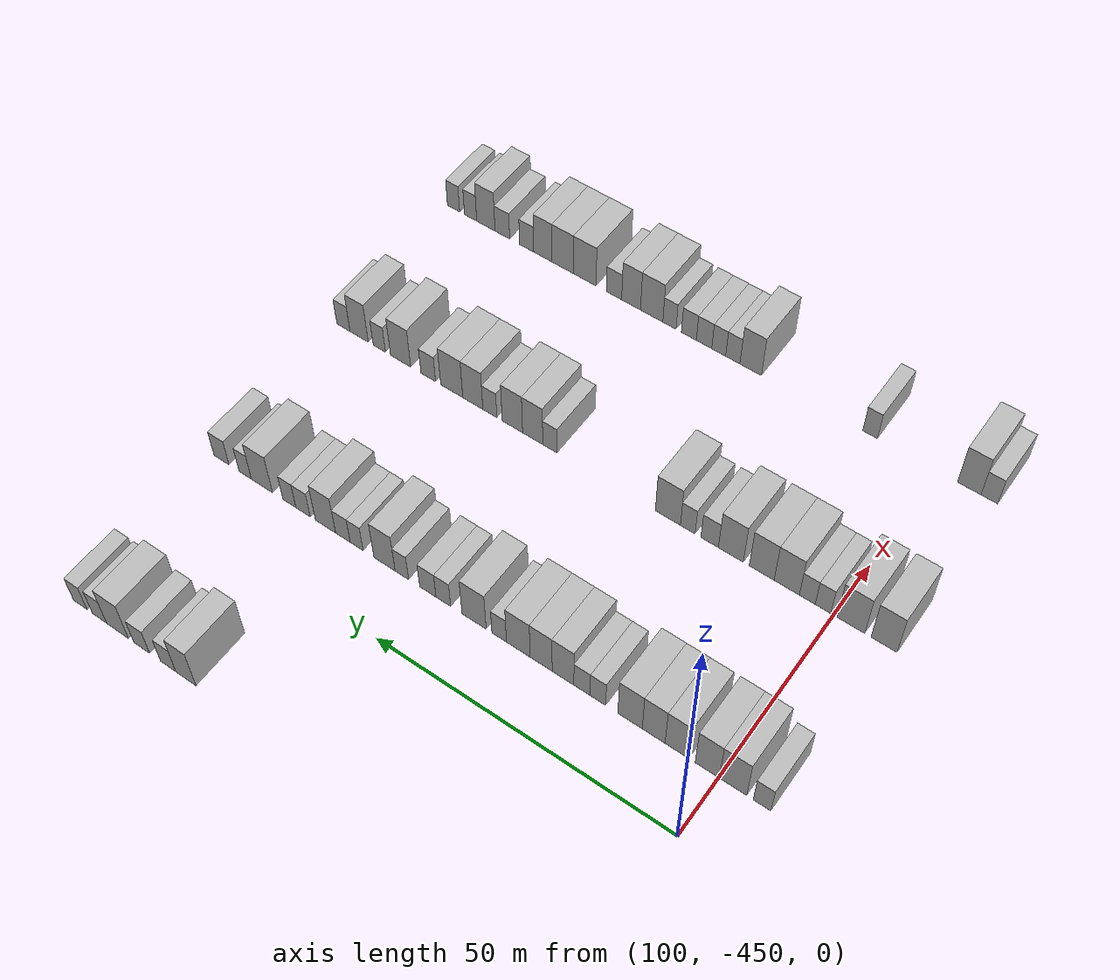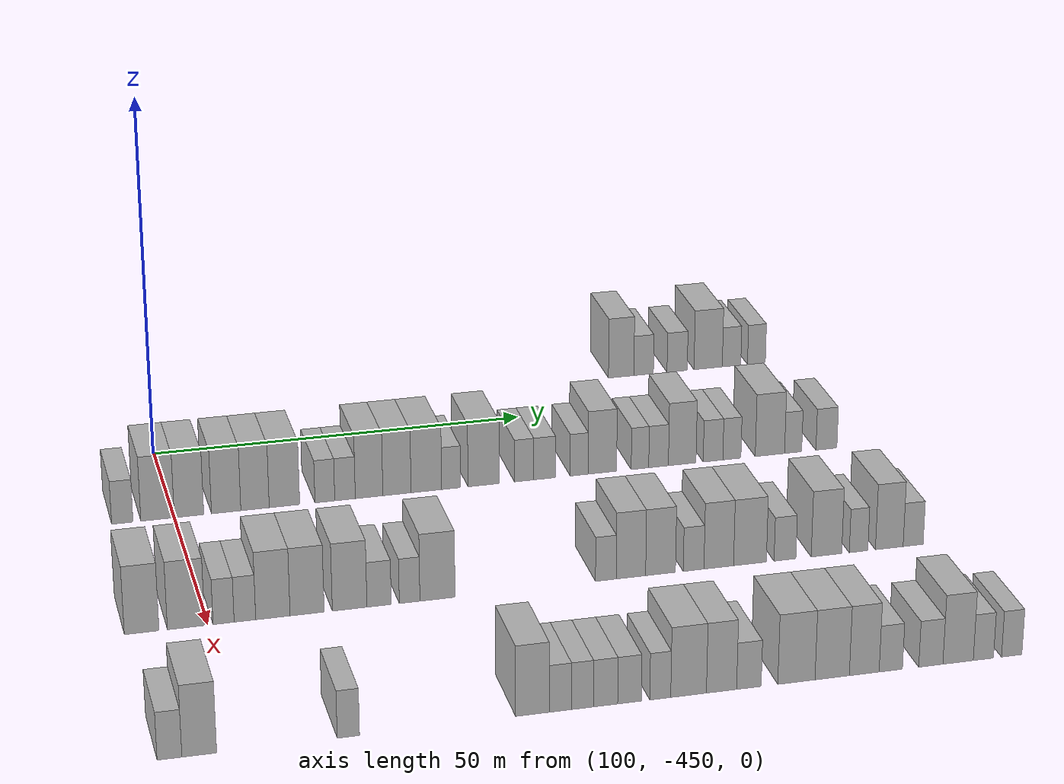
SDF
<sdf version="1.6">
 <world name="default">
  <model name="building_452">
   <static>1</static>
   <pose>85.0000 -382.6650 0 0.000000 0.000000 0.000000</pose>
   <link name="link">
    <pose>0 0 4.50 0 0 0</pose>
    <collision name="collision"><geometry><box><size>10.0000 3.7167 9.0000</size></box></geometry></collision>
    <visual name="visual">
     <cast_shadows>0</cast_shadows>
     <geometry><box><size>10.0000 3.7167 9.0000</size></box></geometry>
     <material>
      <script>
       <uri>model://HANNAS_wall/materials/scripts</uri>
       <uri>model://HANNAS_wall/materials/textures</uri>
       <name>vrc/HANNAS_wall</name>
      </script>
     </material>
    </visual>
   </link>
  </model>
  <model name="building_453">
   <static>1</static>
   <pose>85.0000 -379.3733 0 0.000000 0.000000 0.000000</pose>
   <link name="link">
    <pose>0 0 3.00 0 0 0</pose>
    <collision name="collision"><geometry><box><size>10.0000 2.8666 6.0000</size></box></geometry></collision>
    <visual name="visual">
     <cast_shadows>0</cast_shadows>
     <geometry><box><size>10.0000 2.8666 6.0000</size></box></geometry>
     <material>
      <script>
       <uri>model://HANNAS_wall/materials/scripts</uri>
       <uri>model://HANNAS_wall/materials/textures</uri>
       <name>vrc/HANNAS_wall</name>
      </script>
     </material>
    </visual>
   </link>
  </model>
  <model name="building_454">
   <static>1</static>
   <pose>85.0000 -374.4488 0 0.000000 0.000000 0.000000</pose>
   <link name="link">
    <pose>0 0 3.00 0 0 0</pose>
    <collision name="collision"><geometry><box><size>10.0000 2.9825 6.0000</size></box></geometry></collision>
    <visual name="visual">
     <cast_shadows>0</cast_shadows>
     <geometry><box><size>10.0000 2.9825 6.0000</size></box></geometry>
     <material>
      <script>
       <uri>model://HANNAS_wall/materials/scripts</uri>
       <uri>model://HANNAS_wall/materials/textures</uri>
       <name>vrc/HANNAS_wall</name>
      </script>
     </material>
    </visual>
   </link>
  </model>
  <model name="building_455">
   <static>1</static>
   <pose>85.0000 -369.8648 0 0.000000 0.000000 0.000000</pose>
   <link name="link">
    <pose>0 0 4.50 0 0 0</pose>
    <collision name="collision"><geometry><box><size>10.0000 4.1855 9.0000</size></box></geometry></collision>
    <visual name="visual">
     <cast_shadows>0</cast_shadows>
     <geometry><box><size>10.0000 4.1855 9.0000</size></box></geometry>
     <material>
      <script>
       <uri>model://HANNAS_wall/materials/scripts</uri>
       <uri>model://HANNAS_wall/materials/textures</uri>
       <name>vrc/HANNAS_wall</name>
      </script>
     </material>
    </visual>
   </link>
  </model>
  <model name="building_456">
   <static>1</static>
   <pose>85.0000 -366.3992 0 0.000000 0.000000 0.000000</pose>
   <link name="link">
    <pose>0 0 3.00 0 0 0</pose>
    <collision name="collision"><geometry><box><size>10.0000 2.7455 6.0000</size></box></geometry></collision>
    <visual name="visual">
     <cast_shadows>0</cast_shadows>
     <geometry><box><size>10.0000 2.7455 6.0000</size></box></geometry>
     <material>
      <script>
       <uri>model://HANNAS_wall/materials/scripts</uri>
       <uri>model://HANNAS_wall/materials/textures</uri>
       <name>vrc/HANNAS_wall</name>
      </script>
     </material>
    </visual>
   </link>
  </model>
  <model name="building_457">
   <static>1</static>
   <pose>85.0000 -362.6959 0 0.000000 0.000000 0.000000</pose>
   <link name="link">
    <pose>0 0 3.00 0 0 0</pose>
    <collision name="collision"><geometry><box><size>10.0000 2.6612 6.0000</size></box></geometry></collision>
    <visual name="visual">
     <cast_shadows>0</cast_shadows>
     <geometry><box><size>10.0000 2.6612 6.0000</size></box></geometry>
     <material>
      <script>
       <uri>model://HANNAS_wall/materials/scripts</uri>
       <uri>model://HANNAS_wall/materials/textures</uri>
       <name>vrc/HANNAS_wall</name>
      </script>
     </material>
    </visual>
   </link>
  </model>
  <model name="building_649">
   <static>1</static>
   <pose>115.0000 -456.6392 0 0.000000 0.000000 0.000000</pose>
   <link name="link">
    <pose>0 0 3.00 0 0 0</pose>
    <collision name="collision"><geometry><box><size>10.0000 2.7217 6.0000</size></box></geometry></collision>
    <visual name="visual">
     <cast_shadows>0</cast_shadows>
     <geometry><box><size>10.0000 2.7217 6.0000</size></box></geometry>
     <material>
      <script>
       <uri>model://HANNAS_wall/materials/scripts</uri>
       <uri>model://HANNAS_wall/materials/textures</uri>
       <name>vrc/HANNAS_wall</name>
      </script>
     </material>
    </visual>
   </link>
  </model>
  <model name="building_650">
   <static>1</static>
   <pose>115.0000 -452.1365 0 0.000000 0.000000 0.000000</pose>
   <link name="link">
    <pose>0 0 4.50 0 0 0</pose>
    <collision name="collision"><geometry><box><size>10.0000 4.2837 9.0000</size></box></geometry></collision>
    <visual name="visual">
     <cast_shadows>0</cast_shadows>
     <geometry><box><size>10.0000 4.2837 9.0000</size></box></geometry>
     <material>
      <script>
       <uri>model://HANNAS_wall/materials/scripts</uri>
       <uri>model://HANNAS_wall/materials/textures</uri>
       <name>vrc/HANNAS_wall</name>
      </script>
     </material>
    </visual>
   </link>
  </model>
  <model name="building_651">
   <static>1</static>
   <pose>115.0000 -448.1029 0 0.000000 0.000000 0.000000</pose>
   <link name="link">
    <pose>0 0 4.50 0 0 0</pose>
    <collision name="collision"><geometry><box><size>10.0000 3.7834 9.0000</size></box></geometry></collision>
    <visual name="visual">
     <cast_shadows>0</cast_shadows>
     <geometry><box><size>10.0000 3.7834 9.0000</size></box></geometry>
     <material>
      <script>
       <uri>model://HANNAS_wall/materials/scripts</uri>
       <uri>model://HANNAS_wall/materials/textures</uri>
       <name>vrc/HANNAS_wall</name>
      </script>
     </material>
    </visual>
   </link>
  </model>
  <model name="building_652">
   <static>1</static>
   <pose>115.0000 -443.3142 0 0.000000 0.000000 0.000000</pose>
   <link name="link">
    <pose>0 0 4.50 0 0 0</pose>
    <collision name="collision"><geometry><box><size>10.0000 3.7941 9.0000</size></box></geometry></collision>
    <visual name="visual">
     <cast_shadows>0</cast_shadows>
     <geometry><box><size>10.0000 3.7941 9.0000</size></box></geometry>
     <material>
      <script>
       <uri>model://HANNAS_wall/materials/scripts</uri>
       <uri>model://HANNAS_wall/materials/textures</uri>
       <name>vrc/HANNAS_wall</name>
      </script>
     </material>
    </visual>
   </link>
  </model>
  <model name="building_653">
   <static>1</static>
   <pose>115.0000 -439.5770 0 0.000000 0.000000 0.000000</pose>
   <link name="link">
    <pose>0 0 4.50 0 0 0</pose>
    <collision name="collision"><geometry><box><size>10.0000 3.6803 9.0000</size></box></geometry></collision>
    <visual name="visual">
     <cast_shadows>0</cast_shadows>
     <geometry><box><size>10.0000 3.6803 9.0000</size></box></geometry>
     <material>
      <script>
       <uri>model://HANNAS_wall/materials/scripts</uri>
       <uri>model://HANNAS_wall/materials/textures</uri>
       <name>vrc/HANNAS_wall</name>
      </script>
     </material>
    </visual>
   </link>
  </model>
  <model name="building_654">
   <static>1</static>
   <pose>115.0000 -435.7522 0 0.000000 0.000000 0.000000</pose>
   <link name="link">
    <pose>0 0 4.50 0 0 0</pose>
    <collision name="collision"><geometry><box><size>10.0000 3.9694 9.0000</size></box></geometry></collision>
    <visual name="visual">
     <cast_shadows>0</cast_shadows>
     <geometry><box><size>10.0000 3.9694 9.0000</size></box></geometry>
     <material>
      <script>
       <uri>model://HANNAS_wall/materials/scripts</uri>
       <uri>model://HANNAS_wall/materials/textures</uri>
       <name>vrc/HANNAS_wall</name>
      </script>
     </material>
    </visual>
   </link>
  </model>
  <model name="building_655">
   <static>1</static>
   <pose>115.0000 -430.4721 0 0.000000 0.000000 0.000000</pose>
   <link name="link">
    <pose>0 0 3.00 0 0 0</pose>
    <collision name="collision"><geometry><box><size>10.0000 2.5907 6.0000</size></box></geometry></collision>
    <visual name="visual">
     <cast_shadows>0</cast_shadows>
     <geometry><box><size>10.0000 2.5907 6.0000</size></box></geometry>
     <material>
      <script>
       <uri>model://HANNAS_wall/materials/scripts</uri>
       <uri>model://HANNAS_wall/materials/textures</uri>
       <name>vrc/HANNAS_wall</name>
      </script>
     </material>
    </visual>
   </link>
  </model>
  <model name="building_656">
   <static>1</static>
   <pose>115.0000 -427.8266 0 0.000000 0.000000 0.000000</pose>
   <link name="link">
    <pose>0 0 3.00 0 0 0</pose>
    <collision name="collision"><geometry><box><size>10.0000 2.7003 6.0000</size></box></geometry></collision>
    <visual name="visual">
     <cast_shadows>0</cast_shadows>
     <geometry><box><size>10.0000 2.7003 6.0000</size></box></geometry>
     <material>
      <script>
       <uri>model://HANNAS_wall/materials/scripts</uri>
       <uri>model://HANNAS_wall/materials/textures</uri>
       <name>vrc/HANNAS_wall</name>
      </script>
     </material>
    </visual>
   </link>
  </model>
  <model name="building_657">
   <static>1</static>
   <pose>115.0000 -424.6588 0 0.000000 0.000000 0.000000</pose>
   <link name="link">
    <pose>0 0 4.50 0 0 0</pose>
    <collision name="collision"><geometry><box><size>10.0000 3.6352 9.0000</size></box></geometry></collision>
    <visual name="visual">
     <cast_shadows>0</cast_shadows>
     <geometry><box><size>10.0000 3.6352 9.0000</size></box></geometry>
     <material>
      <script>
       <uri>model://HANNAS_wall/materials/scripts</uri>
       <uri>model://HANNAS_wall/materials/textures</uri>
       <name>vrc/HANNAS_wall</name>
      </script>
     </material>
    </visual>
   </link>
  </model>
  <model name="building_658">
   <static>1</static>
   <pose>115.0000 -420.9721 0 0.000000 0.000000 0.000000</pose>
   <link name="link">
    <pose>0 0 4.50 0 0 0</pose>
    <collision name="collision"><geometry><box><size>10.0000 3.7383 9.0000</size></box></geometry></collision>
    <visual name="visual">
     <cast_shadows>0</cast_shadows>
     <geometry><box><size>10.0000 3.7383 9.0000</size></box></geometry>
     <material>
      <script>
       <uri>model://HANNAS_wall/materials/scripts</uri>
       <uri>model://HANNAS_wall/materials/textures</uri>
       <name>vrc/HANNAS_wall</name>
      </script>
     </material>
    </visual>
   </link>
  </model>
  <model name="building_659">
   <static>1</static>
   <pose>115.0000 -417.0697 0 0.000000 0.000000 0.000000</pose>
   <link name="link">
    <pose>0 0 4.50 0 0 0</pose>
    <collision name="collision"><geometry><box><size>10.0000 4.0666 9.0000</size></box></geometry></collision>
    <visual name="visual">
     <cast_shadows>0</cast_shadows>
     <geometry><box><size>10.0000 4.0666 9.0000</size></box></geometry>
     <material>
      <script>
       <uri>model://HANNAS_wall/materials/scripts</uri>
       <uri>model://HANNAS_wall/materials/textures</uri>
       <name>vrc/HANNAS_wall</name>
      </script>
     </material>
    </visual>
   </link>
  </model>
  <model name="building_660">
   <static>1</static>
   <pose>115.0000 -413.7773 0 0.000000 0.000000 0.000000</pose>
   <link name="link">
    <pose>0 0 3.00 0 0 0</pose>
    <collision name="collision"><geometry><box><size>10.0000 2.5181 6.0000</size></box></geometry></collision>
    <visual name="visual">
     <cast_shadows>0</cast_shadows>
     <geometry><box><size>10.0000 2.5181 6.0000</size></box></geometry>
     <material>
      <script>
       <uri>model://HANNAS_wall/materials/scripts</uri>
       <uri>model://HANNAS_wall/materials/textures</uri>
       <name>vrc/HANNAS_wall</name>
      </script>
     </material>
    </visual>
   </link>
  </model>
  <model name="building_661">
   <static>1</static>
   <pose>115.0000 -409.4018 0 0.000000 0.000000 0.000000</pose>
   <link name="link">
    <pose>0 0 4.50 0 0 0</pose>
    <collision name="collision"><geometry><box><size>10.0000 4.2331 9.0000</size></box></geometry></collision>
    <visual name="visual">
     <cast_shadows>0</cast_shadows>
     <geometry><box><size>10.0000 4.2331 9.0000</size></box></geometry>
     <material>
      <script>
       <uri>model://HANNAS_wall/materials/scripts</uri>
       <uri>model://HANNAS_wall/materials/textures</uri>
       <name>vrc/HANNAS_wall</name>
      </script>
     </material>
    </visual>
   </link>
  </model>
  <model name="building_662">
   <static>1</static>
   <pose>115.0000 -403.9792 0 0.000000 0.000000 0.000000</pose>
   <link name="link">
    <pose>0 0 3.00 0 0 0</pose>
    <collision name="collision"><geometry><box><size>10.0000 2.6120 6.0000</size></box></geometry></collision>
    <visual name="visual">
     <cast_shadows>0</cast_shadows>
     <geometry><box><size>10.0000 2.6120 6.0000</size></box></geometry>
     <material>
      <script>
       <uri>model://HANNAS_wall/materials/scripts</uri>
       <uri>model://HANNAS_wall/materials/textures</uri>
       <name>vrc/HANNAS_wall</name>
      </script>
     </material>
    </visual>
   </link>
  </model>
  <model name="building_663">
   <static>1</static>
   <pose>115.0000 -401.2112 0 0.000000 0.000000 0.000000</pose>
   <link name="link">
    <pose>0 0 3.00 0 0 0</pose>
    <collision name="collision"><geometry><box><size>10.0000 2.9239 6.0000</size></box></geometry></collision>
    <visual name="visual">
     <cast_shadows>0</cast_shadows>
     <geometry><box><size>10.0000 2.9239 6.0000</size></box></geometry>
     <material>
      <script>
       <uri>model://HANNAS_wall/materials/scripts</uri>
       <uri>model://HANNAS_wall/materials/textures</uri>
       <name>vrc/HANNAS_wall</name>
      </script>
     </material>
    </visual>
   </link>
  </model>
  <model name="building_664">
   <static>1</static>
   <pose>115.0000 -396.5243 0 0.000000 0.000000 0.000000</pose>
   <link name="link">
    <pose>0 0 3.00 0 0 0</pose>
    <collision name="collision"><geometry><box><size>10.0000 2.4501 6.0000</size></box></geometry></collision>
    <visual name="visual">
     <cast_shadows>0</cast_shadows>
     <geometry><box><size>10.0000 2.4501 6.0000</size></box></geometry>
     <material>
      <script>
       <uri>model://HANNAS_wall/materials/scripts</uri>
       <uri>model://HANNAS_wall/materials/textures</uri>
       <name>vrc/HANNAS_wall</name>
      </script>
     </material>
    </visual>
   </link>
  </model>
  <model name="building_665">
   <static>1</static>
   <pose>115.0000 -393.3668 0 0.000000 0.000000 0.000000</pose>
   <link name="link">
    <pose>0 0 4.50 0 0 0</pose>
    <collision name="collision"><geometry><box><size>10.0000 3.8649 9.0000</size></box></geometry></collision>
    <visual name="visual">
     <cast_shadows>0</cast_shadows>
     <geometry><box><size>10.0000 3.8649 9.0000</size></box></geometry>
     <material>
      <script>
       <uri>model://HANNAS_wall/materials/scripts</uri>
       <uri>model://HANNAS_wall/materials/textures</uri>
       <name>vrc/HANNAS_wall</name>
      </script>
     </material>
    </visual>
   </link>
  </model>
  <model name="building_666">
   <static>1</static>
   <pose>115.0000 -388.2342 0 0.000000 0.000000 0.000000</pose>
   <link name="link">
    <pose>0 0 3.00 0 0 0</pose>
    <collision name="collision"><geometry><box><size>10.0000 2.4001 6.0000</size></box></geometry></collision>
    <visual name="visual">
     <cast_shadows>0</cast_shadows>
     <geometry><box><size>10.0000 2.4001 6.0000</size></box></geometry>
     <material>
      <script>
       <uri>model://HANNAS_wall/materials/scripts</uri>
       <uri>model://HANNAS_wall/materials/textures</uri>
       <name>vrc/HANNAS_wall</name>
      </script>
     </material>
    </visual>
   </link>
  </model>
  <model name="building_667">
   <static>1</static>
   <pose>115.0000 -385.6806 0 0.000000 0.000000 0.000000</pose>
   <link name="link">
    <pose>0 0 3.00 0 0 0</pose>
    <collision name="collision"><geometry><box><size>10.0000 2.7072 6.0000</size></box></geometry></collision>
    <visual name="visual">
     <cast_shadows>0</cast_shadows>
     <geometry><box><size>10.0000 2.7072 6.0000</size></box></geometry>
     <material>
      <script>
       <uri>model://HANNAS_wall/materials/scripts</uri>
       <uri>model://HANNAS_wall/materials/textures</uri>
       <name>vrc/HANNAS_wall</name>
      </script>
     </material>
    </visual>
   </link>
  </model>
  <model name="building_668">
   <static>1</static>
   <pose>115.0000 -382.4244 0 0.000000 0.000000 0.000000</pose>
   <link name="link">
    <pose>0 0 4.50 0 0 0</pose>
    <collision name="collision"><geometry><box><size>10.0000 3.8051 9.0000</size></box></geometry></collision>
    <visual name="visual">
     <cast_shadows>0</cast_shadows>
     <geometry><box><size>10.0000 3.8051 9.0000</size></box></geometry>
     <material>
      <script>
       <uri>model://HANNAS_wall/materials/scripts</uri>
       <uri>model://HANNAS_wall/materials/textures</uri>
       <name>vrc/HANNAS_wall</name>
      </script>
     </material>
    </visual>
   </link>
  </model>
  <model name="building_669">
   <static>1</static>
   <pose>115.0000 -378.1611 0 0.000000 0.000000 0.000000</pose>
   <link name="link">
    <pose>0 0 3.00 0 0 0</pose>
    <collision name="collision"><geometry><box><size>10.0000 2.7216 6.0000</size></box></geometry></collision>
    <visual name="visual">
     <cast_shadows>0</cast_shadows>
     <geometry><box><size>10.0000 2.7216 6.0000</size></box></geometry>
     <material>
      <script>
       <uri>model://HANNAS_wall/materials/scripts</uri>
       <uri>model://HANNAS_wall/materials/textures</uri>
       <name>vrc/HANNAS_wall</name>
      </script>
     </material>
    </visual>
   </link>
  </model>
  <model name="building_670">
   <static>1</static>
   <pose>115.0000 -375.5454 0 0.000000 0.000000 0.000000</pose>
   <link name="link">
    <pose>0 0 3.00 0 0 0</pose>
    <collision name="collision"><geometry><box><size>10.0000 2.5098 6.0000</size></box></geometry></collision>
    <visual name="visual">
     <cast_shadows>0</cast_shadows>
     <geometry><box><size>10.0000 2.5098 6.0000</size></box></geometry>
     <material>
      <script>
       <uri>model://HANNAS_wall/materials/scripts</uri>
       <uri>model://HANNAS_wall/materials/textures</uri>
       <name>vrc/HANNAS_wall</name>
      </script>
     </material>
    </visual>
   </link>
  </model>
  <model name="building_671">
   <static>1</static>
   <pose>115.0000 -370.2449 0 0.000000 0.000000 0.000000</pose>
   <link name="link">
    <pose>0 0 4.50 0 0 0</pose>
    <collision name="collision"><geometry><box><size>10.0000 4.0913 9.0000</size></box></geometry></collision>
    <visual name="visual">
     <cast_shadows>0</cast_shadows>
     <geometry><box><size>10.0000 4.0913 9.0000</size></box></geometry>
     <material>
      <script>
       <uri>model://HANNAS_wall/materials/scripts</uri>
       <uri>model://HANNAS_wall/materials/textures</uri>
       <name>vrc/HANNAS_wall</name>
      </script>
     </material>
    </visual>
   </link>
  </model>
  <model name="building_672">
   <static>1</static>
   <pose>115.0000 -366.9975 0 0.000000 0.000000 0.000000</pose>
   <link name="link">
    <pose>0 0 3.00 0 0 0</pose>
    <collision name="collision"><geometry><box><size>10.0000 2.4035 6.0000</size></box></geometry></collision>
    <visual name="visual">
     <cast_shadows>0</cast_shadows>
     <geometry><box><size>10.0000 2.4035 6.0000</size></box></geometry>
     <material>
      <script>
       <uri>model://HANNAS_wall/materials/scripts</uri>
       <uri>model://HANNAS_wall/materials/textures</uri>
       <name>vrc/HANNAS_wall</name>
      </script>
     </material>
    </visual>
   </link>
  </model>
  <model name="building_673">
   <static>1</static>
   <pose>115.0000 -362.3193 0 0.000000 0.000000 0.000000</pose>
   <link name="link">
    <pose>0 0 3.00 0 0 0</pose>
    <collision name="collision"><geometry><box><size>10.0000 2.9530 6.0000</size></box></geometry></collision>
    <visual name="visual">
     <cast_shadows>0</cast_shadows>
     <geometry><box><size>10.0000 2.9530 6.0000</size></box></geometry>
     <material>
      <script>
       <uri>model://HANNAS_wall/materials/scripts</uri>
       <uri>model://HANNAS_wall/materials/textures</uri>
       <name>vrc/HANNAS_wall</name>
      </script>
     </material>
    </visual>
   </link>
  </model>
  <model name="building_859">
   <static>1</static>
   <pose>145.0000 -457.9353 0 0.000000 0.000000 0.000000</pose>
   <link name="link">
    <pose>0 0 4.50 0 0 0</pose>
    <collision name="collision"><geometry><box><size>10.0000 4.1294 9.0000</size></box></geometry></collision>
    <visual name="visual">
     <cast_shadows>0</cast_shadows>
     <geometry><box><size>10.0000 4.1294 9.0000</size></box></geometry>
     <material>
      <script>
       <uri>model://HANNAS_wall/materials/scripts</uri>
       <uri>model://HANNAS_wall/materials/textures</uri>
       <name>vrc/HANNAS_wall</name>
      </script>
     </material>
    </visual>
   </link>
  </model>
  <model name="building_860">
   <static>1</static>
   <pose>145.0000 -452.6386 0 0.000000 0.000000 0.000000</pose>
   <link name="link">
    <pose>0 0 4.50 0 0 0</pose>
    <collision name="collision"><geometry><box><size>10.0000 4.4640 9.0000</size></box></geometry></collision>
    <visual name="visual">
     <cast_shadows>0</cast_shadows>
     <geometry><box><size>10.0000 4.4640 9.0000</size></box></geometry>
     <material>
      <script>
       <uri>model://HANNAS_wall/materials/scripts</uri>
       <uri>model://HANNAS_wall/materials/textures</uri>
       <name>vrc/HANNAS_wall</name>
      </script>
     </material>
    </visual>
   </link>
  </model>
  <model name="building_861">
   <static>1</static>
   <pose>145.0000 -448.1387 0 0.000000 0.000000 0.000000</pose>
   <link name="link">
    <pose>0 0 3.00 0 0 0</pose>
    <collision name="collision"><geometry><box><size>10.0000 2.5357 6.0000</size></box></geometry></collision>
    <visual name="visual">
     <cast_shadows>0</cast_shadows>
     <geometry><box><size>10.0000 2.5357 6.0000</size></box></geometry>
     <material>
      <script>
       <uri>model://HANNAS_wall/materials/scripts</uri>
       <uri>model://HANNAS_wall/materials/textures</uri>
       <name>vrc/HANNAS_wall</name>
      </script>
     </material>
    </visual>
   </link>
  </model>
  <model name="building_862">
   <static>1</static>
   <pose>145.0000 -445.5691 0 0.000000 0.000000 0.000000</pose>
   <link name="link">
    <pose>0 0 3.00 0 0 0</pose>
    <collision name="collision"><geometry><box><size>10.0000 2.6036 6.0000</size></box></geometry></collision>
    <visual name="visual">
     <cast_shadows>0</cast_shadows>
     <geometry><box><size>10.0000 2.6036 6.0000</size></box></geometry>
     <material>
      <script>
       <uri>model://HANNAS_wall/materials/scripts</uri>
       <uri>model://HANNAS_wall/materials/textures</uri>
       <name>vrc/HANNAS_wall</name>
      </script>
     </material>
    </visual>
   </link>
  </model>
  <model name="building_863">
   <static>1</static>
   <pose>145.0000 -442.1870 0 0.000000 0.000000 0.000000</pose>
   <link name="link">
    <pose>0 0 4.50 0 0 0</pose>
    <collision name="collision"><geometry><box><size>10.0000 4.1605 9.0000</size></box></geometry></collision>
    <visual name="visual">
     <cast_shadows>0</cast_shadows>
     <geometry><box><size>10.0000 4.1605 9.0000</size></box></geometry>
     <material>
      <script>
       <uri>model://HANNAS_wall/materials/scripts</uri>
       <uri>model://HANNAS_wall/materials/textures</uri>
       <name>vrc/HANNAS_wall</name>
      </script>
     </material>
    </visual>
   </link>
  </model>
  <model name="building_864">
   <static>1</static>
   <pose>145.0000 -438.0316 0 0.000000 0.000000 0.000000</pose>
   <link name="link">
    <pose>0 0 4.50 0 0 0</pose>
    <collision name="collision"><geometry><box><size>10.0000 4.1503 9.0000</size></box></geometry></collision>
    <visual name="visual">
     <cast_shadows>0</cast_shadows>
     <geometry><box><size>10.0000 4.1503 9.0000</size></box></geometry>
     <material>
      <script>
       <uri>model://HANNAS_wall/materials/scripts</uri>
       <uri>model://HANNAS_wall/materials/textures</uri>
       <name>vrc/HANNAS_wall</name>
      </script>
     </material>
    </visual>
   </link>
  </model>
  <model name="building_865">
   <static>1</static>
   <pose>145.0000 -432.8403 0 0.000000 0.000000 0.000000</pose>
   <link name="link">
    <pose>0 0 4.50 0 0 0</pose>
    <collision name="collision"><geometry><box><size>10.0000 4.2325 9.0000</size></box></geometry></collision>
    <visual name="visual">
     <cast_shadows>0</cast_shadows>
     <geometry><box><size>10.0000 4.2325 9.0000</size></box></geometry>
     <material>
      <script>
       <uri>model://HANNAS_wall/materials/scripts</uri>
       <uri>model://HANNAS_wall/materials/textures</uri>
       <name>vrc/HANNAS_wall</name>
      </script>
     </material>
    </visual>
   </link>
  </model>
  <model name="building_866">
   <static>1</static>
   <pose>145.0000 -429.2325 0 0.000000 0.000000 0.000000</pose>
   <link name="link">
    <pose>0 0 3.00 0 0 0</pose>
    <collision name="collision"><geometry><box><size>10.0000 2.9831 6.0000</size></box></geometry></collision>
    <visual name="visual">
     <cast_shadows>0</cast_shadows>
     <geometry><box><size>10.0000 2.9831 6.0000</size></box></geometry>
     <material>
      <script>
       <uri>model://HANNAS_wall/materials/scripts</uri>
       <uri>model://HANNAS_wall/materials/textures</uri>
       <name>vrc/HANNAS_wall</name>
      </script>
     </material>
    </visual>
   </link>
  </model>
  <model name="building_867">
   <static>1</static>
   <pose>145.0000 -425.4706 0 0.000000 0.000000 0.000000</pose>
   <link name="link">
    <pose>0 0 3.00 0 0 0</pose>
    <collision name="collision"><geometry><box><size>10.0000 2.5407 6.0000</size></box></geometry></collision>
    <visual name="visual">
     <cast_shadows>0</cast_shadows>
     <geometry><box><size>10.0000 2.5407 6.0000</size></box></geometry>
     <material>
      <script>
       <uri>model://HANNAS_wall/materials/scripts</uri>
       <uri>model://HANNAS_wall/materials/textures</uri>
       <name>vrc/HANNAS_wall</name>
      </script>
     </material>
    </visual>
   </link>
  </model>
  <model name="building_868">
   <static>1</static>
   <pose>145.0000 -422.0229 0 0.000000 0.000000 0.000000</pose>
   <link name="link">
    <pose>0 0 4.50 0 0 0</pose>
    <collision name="collision"><geometry><box><size>10.0000 4.3547 9.0000</size></box></geometry></collision>
    <visual name="visual">
     <cast_shadows>0</cast_shadows>
     <geometry><box><size>10.0000 4.3547 9.0000</size></box></geometry>
     <material>
      <script>
       <uri>model://HANNAS_wall/materials/scripts</uri>
       <uri>model://HANNAS_wall/materials/textures</uri>
       <name>vrc/HANNAS_wall</name>
      </script>
     </material>
    </visual>
   </link>
  </model>
  <model name="building_869">
   <static>1</static>
   <pose>145.0000 -400.9003 0 0.000000 0.000000 0.000000</pose>
   <link name="link">
    <pose>0 0 3.00 0 0 0</pose>
    <collision name="collision"><geometry><box><size>10.0000 2.6302 6.0000</size></box></geometry></collision>
    <visual name="visual">
     <cast_shadows>0</cast_shadows>
     <geometry><box><size>10.0000 2.6302 6.0000</size></box></geometry>
     <material>
      <script>
       <uri>model://HANNAS_wall/materials/scripts</uri>
       <uri>model://HANNAS_wall/materials/textures</uri>
       <name>vrc/HANNAS_wall</name>
      </script>
     </material>
    </visual>
   </link>
  </model>
  <model name="building_870">
   <static>1</static>
   <pose>145.0000 -397.7081 0 0.000000 0.000000 0.000000</pose>
   <link name="link">
    <pose>0 0 4.50 0 0 0</pose>
    <collision name="collision"><geometry><box><size>10.0000 3.7543 9.0000</size></box></geometry></collision>
    <visual name="visual">
     <cast_shadows>0</cast_shadows>
     <geometry><box><size>10.0000 3.7543 9.0000</size></box></geometry>
     <material>
      <script>
       <uri>model://HANNAS_wall/materials/scripts</uri>
       <uri>model://HANNAS_wall/materials/textures</uri>
       <name>vrc/HANNAS_wall</name>
      </script>
     </material>
    </visual>
   </link>
  </model>
  <model name="building_871">
   <static>1</static>
   <pose>145.0000 -393.9230 0 0.000000 0.000000 0.000000</pose>
   <link name="link">
    <pose>0 0 4.50 0 0 0</pose>
    <collision name="collision"><geometry><box><size>10.0000 3.8158 9.0000</size></box></geometry></collision>
    <visual name="visual">
     <cast_shadows>0</cast_shadows>
     <geometry><box><size>10.0000 3.8158 9.0000</size></box></geometry>
     <material>
      <script>
       <uri>model://HANNAS_wall/materials/scripts</uri>
       <uri>model://HANNAS_wall/materials/textures</uri>
       <name>vrc/HANNAS_wall</name>
      </script>
     </material>
    </visual>
   </link>
  </model>
  <model name="building_872">
   <static>1</static>
   <pose>145.0000 -389.6845 0 0.000000 0.000000 0.000000</pose>
   <link name="link">
    <pose>0 0 3.00 0 0 0</pose>
    <collision name="collision"><geometry><box><size>10.0000 2.6612 6.0000</size></box></geometry></collision>
    <visual name="visual">
     <cast_shadows>0</cast_shadows>
     <geometry><box><size>10.0000 2.6612 6.0000</size></box></geometry>
     <material>
      <script>
       <uri>model://HANNAS_wall/materials/scripts</uri>
       <uri>model://HANNAS_wall/materials/textures</uri>
       <name>vrc/HANNAS_wall</name>
      </script>
     </material>
    </visual>
   </link>
  </model>
  <model name="building_873">
   <static>1</static>
   <pose>145.0000 -386.4418 0 0.000000 0.000000 0.000000</pose>
   <link name="link">
    <pose>0 0 4.50 0 0 0</pose>
    <collision name="collision"><geometry><box><size>10.0000 3.8243 9.0000</size></box></geometry></collision>
    <visual name="visual">
     <cast_shadows>0</cast_shadows>
     <geometry><box><size>10.0000 3.8243 9.0000</size></box></geometry>
     <material>
      <script>
       <uri>model://HANNAS_wall/materials/scripts</uri>
       <uri>model://HANNAS_wall/materials/textures</uri>
       <name>vrc/HANNAS_wall</name>
      </script>
     </material>
    </visual>
   </link>
  </model>
  <model name="building_874">
   <static>1</static>
   <pose>145.0000 -382.4025 0 0.000000 0.000000 0.000000</pose>
   <link name="link">
    <pose>0 0 4.50 0 0 0</pose>
    <collision name="collision"><geometry><box><size>10.0000 4.2543 9.0000</size></box></geometry></collision>
    <visual name="visual">
     <cast_shadows>0</cast_shadows>
     <geometry><box><size>10.0000 4.2543 9.0000</size></box></geometry>
     <material>
      <script>
       <uri>model://HANNAS_wall/materials/scripts</uri>
       <uri>model://HANNAS_wall/materials/textures</uri>
       <name>vrc/HANNAS_wall</name>
      </script>
     </material>
    </visual>
   </link>
  </model>
  <model name="building_875">
   <static>1</static>
   <pose>145.0000 -377.8512 0 0.000000 0.000000 0.000000</pose>
   <link name="link">
    <pose>0 0 3.00 0 0 0</pose>
    <collision name="collision"><geometry><box><size>10.0000 2.8483 6.0000</size></box></geometry></collision>
    <visual name="visual">
     <cast_shadows>0</cast_shadows>
     <geometry><box><size>10.0000 2.8483 6.0000</size></box></geometry>
     <material>
      <script>
       <uri>model://HANNAS_wall/materials/scripts</uri>
       <uri>model://HANNAS_wall/materials/textures</uri>
       <name>vrc/HANNAS_wall</name>
      </script>
     </material>
    </visual>
   </link>
  </model>
  <model name="building_876">
   <static>1</static>
   <pose>145.0000 -372.4277 0 0.000000 0.000000 0.000000</pose>
   <link name="link">
    <pose>0 0 4.50 0 0 0</pose>
    <collision name="collision"><geometry><box><size>10.0000 3.9987 9.0000</size></box></geometry></collision>
    <visual name="visual">
     <cast_shadows>0</cast_shadows>
     <geometry><box><size>10.0000 3.9987 9.0000</size></box></geometry>
     <material>
      <script>
       <uri>model://HANNAS_wall/materials/scripts</uri>
       <uri>model://HANNAS_wall/materials/textures</uri>
       <name>vrc/HANNAS_wall</name>
      </script>
     </material>
    </visual>
   </link>
  </model>
  <model name="building_877">
   <static>1</static>
   <pose>145.0000 -368.2042 0 0.000000 0.000000 0.000000</pose>
   <link name="link">
    <pose>0 0 3.00 0 0 0</pose>
    <collision name="collision"><geometry><box><size>10.0000 2.4483 6.0000</size></box></geometry></collision>
    <visual name="visual">
     <cast_shadows>0</cast_shadows>
     <geometry><box><size>10.0000 2.4483 6.0000</size></box></geometry>
     <material>
      <script>
       <uri>model://HANNAS_wall/materials/scripts</uri>
       <uri>model://HANNAS_wall/materials/textures</uri>
       <name>vrc/HANNAS_wall</name>
      </script>
     </material>
    </visual>
   </link>
  </model>
  <model name="building_878">
   <static>1</static>
   <pose>145.0000 -364.1462 0 0.000000 0.000000 0.000000</pose>
   <link name="link">
    <pose>0 0 4.50 0 0 0</pose>
    <collision name="collision"><geometry><box><size>10.0000 3.6676 9.0000</size></box></geometry></collision>
    <visual name="visual">
     <cast_shadows>0</cast_shadows>
     <geometry><box><size>10.0000 3.6676 9.0000</size></box></geometry>
     <material>
      <script>
       <uri>model://HANNAS_wall/materials/scripts</uri>
       <uri>model://HANNAS_wall/materials/textures</uri>
       <name>vrc/HANNAS_wall</name>
      </script>
     </material>
    </visual>
   </link>
  </model>
  <model name="building_879">
   <static>1</static>
   <pose>145.0000 -360.9830 0 0.000000 0.000000 0.000000</pose>
   <link name="link">
    <pose>0 0 3.00 0 0 0</pose>
    <collision name="collision"><geometry><box><size>10.0000 2.6587 6.0000</size></box></geometry></collision>
    <visual name="visual">
     <cast_shadows>0</cast_shadows>
     <geometry><box><size>10.0000 2.6587 6.0000</size></box></geometry>
     <material>
      <script>
       <uri>model://HANNAS_wall/materials/scripts</uri>
       <uri>model://HANNAS_wall/materials/textures</uri>
       <name>vrc/HANNAS_wall</name>
      </script>
     </material>
    </visual>
   </link>
  </model>
  <model name="building_1084">
   <static>1</static>
   <pose>175.0000 -458.6289 0 0.000000 0.000000 0.000000</pose>
   <link name="link">
    <pose>0 0 3.00 0 0 0</pose>
    <collision name="collision"><geometry><box><size>10.0000 2.7422 6.0000</size></box></geometry></collision>
    <visual name="visual">
     <cast_shadows>0</cast_shadows>
     <geometry><box><size>10.0000 2.7422 6.0000</size></box></geometry>
     <material>
      <script>
       <uri>model://HANNAS_wall/materials/scripts</uri>
       <uri>model://HANNAS_wall/materials/textures</uri>
       <name>vrc/HANNAS_wall</name>
      </script>
     </material>
    </visual>
   </link>
  </model>
  <model name="building_1085">
   <static>1</static>
   <pose>175.0000 -455.3290 0 0.000000 0.000000 0.000000</pose>
   <link name="link">
    <pose>0 0 4.50 0 0 0</pose>
    <collision name="collision"><geometry><box><size>10.0000 3.8576 9.0000</size></box></geometry></collision>
    <visual name="visual">
     <cast_shadows>0</cast_shadows>
     <geometry><box><size>10.0000 3.8576 9.0000</size></box></geometry>
     <material>
      <script>
       <uri>model://HANNAS_wall/materials/scripts</uri>
       <uri>model://HANNAS_wall/materials/textures</uri>
       <name>vrc/HANNAS_wall</name>
      </script>
     </material>
    </visual>
   </link>
  </model>
  <model name="building_1086">
   <static>1</static>
   <pose>175.0000 -438.6122 0 0.000000 0.000000 0.000000</pose>
   <link name="link">
    <pose>0 0 3.00 0 0 0</pose>
    <collision name="collision"><geometry><box><size>10.0000 2.5253 6.0000</size></box></geometry></collision>
    <visual name="visual">
     <cast_shadows>0</cast_shadows>
     <geometry><box><size>10.0000 2.5253 6.0000</size></box></geometry>
     <material>
      <script>
       <uri>model://HANNAS_wall/materials/scripts</uri>
       <uri>model://HANNAS_wall/materials/textures</uri>
       <name>vrc/HANNAS_wall</name>
      </script>
     </material>
    </visual>
   </link>
  </model>
  <model name="building_1087">
   <static>1</static>
   <pose>175.0000 -417.4813 0 0.000000 0.000000 0.000000</pose>
   <link name="link">
    <pose>0 0 4.50 0 0 0</pose>
    <collision name="collision"><geometry><box><size>10.0000 3.9122 9.0000</size></box></geometry></collision>
    <visual name="visual">
     <cast_shadows>0</cast_shadows>
     <geometry><box><size>10.0000 3.9122 9.0000</size></box></geometry>
     <material>
      <script>
       <uri>model://HANNAS_wall/materials/scripts</uri>
       <uri>model://HANNAS_wall/materials/textures</uri>
       <name>vrc/HANNAS_wall</name>
      </script>
     </material>
    </visual>
   </link>
  </model>
  <model name="building_1088">
   <static>1</static>
   <pose>175.0000 -414.2225 0 0.000000 0.000000 0.000000</pose>
   <link name="link">
    <pose>0 0 3.00 0 0 0</pose>
    <collision name="collision"><geometry><box><size>10.0000 2.6054 6.0000</size></box></geometry></collision>
    <visual name="visual">
     <cast_shadows>0</cast_shadows>
     <geometry><box><size>10.0000 2.6054 6.0000</size></box></geometry>
     <material>
      <script>
       <uri>model://HANNAS_wall/materials/scripts</uri>
       <uri>model://HANNAS_wall/materials/textures</uri>
       <name>vrc/HANNAS_wall</name>
      </script>
     </material>
    </visual>
   </link>
  </model>
  <model name="building_1089">
   <static>1</static>
   <pose>175.0000 -411.6412 0 0.000000 0.000000 0.000000</pose>
   <link name="link">
    <pose>0 0 3.00 0 0 0</pose>
    <collision name="collision"><geometry><box><size>10.0000 2.5573 6.0000</size></box></geometry></collision>
    <visual name="visual">
     <cast_shadows>0</cast_shadows>
     <geometry><box><size>10.0000 2.5573 6.0000</size></box></geometry>
     <material>
      <script>
       <uri>model://HANNAS_wall/materials/scripts</uri>
       <uri>model://HANNAS_wall/materials/textures</uri>
       <name>vrc/HANNAS_wall</name>
      </script>
     </material>
    </visual>
   </link>
  </model>
  <model name="building_1090">
   <static>1</static>
   <pose>175.0000 -408.9346 0 0.000000 0.000000 0.000000</pose>
   <link name="link">
    <pose>0 0 3.00 0 0 0</pose>
    <collision name="collision"><geometry><box><size>10.0000 2.8558 6.0000</size></box></geometry></collision>
    <visual name="visual">
     <cast_shadows>0</cast_shadows>
     <geometry><box><size>10.0000 2.8558 6.0000</size></box></geometry>
     <material>
      <script>
       <uri>model://HANNAS_wall/materials/scripts</uri>
       <uri>model://HANNAS_wall/materials/textures</uri>
       <name>vrc/HANNAS_wall</name>
      </script>
     </material>
    </visual>
   </link>
  </model>
  <model name="building_1091">
   <static>1</static>
   <pose>175.0000 -406.1119 0 0.000000 0.000000 0.000000</pose>
   <link name="link">
    <pose>0 0 3.00 0 0 0</pose>
    <collision name="collision"><geometry><box><size>10.0000 2.7896 6.0000</size></box></geometry></collision>
    <visual name="visual">
     <cast_shadows>0</cast_shadows>
     <geometry><box><size>10.0000 2.7896 6.0000</size></box></geometry>
     <material>
      <script>
       <uri>model://HANNAS_wall/materials/scripts</uri>
       <uri>model://HANNAS_wall/materials/textures</uri>
       <name>vrc/HANNAS_wall</name>
      </script>
     </material>
    </visual>
   </link>
  </model>
  <model name="building_1092">
   <static>1</static>
   <pose>175.0000 -402.4749 0 0.000000 0.000000 0.000000</pose>
   <link name="link">
    <pose>0 0 3.00 0 0 0</pose>
    <collision name="collision"><geometry><box><size>10.0000 2.4845 6.0000</size></box></geometry></collision>
    <visual name="visual">
     <cast_shadows>0</cast_shadows>
     <geometry><box><size>10.0000 2.4845 6.0000</size></box></geometry>
     <material>
      <script>
       <uri>model://HANNAS_wall/materials/scripts</uri>
       <uri>model://HANNAS_wall/materials/textures</uri>
       <name>vrc/HANNAS_wall</name>
      </script>
     </material>
    </visual>
   </link>
  </model>
  <model name="building_1093">
   <static>1</static>
   <pose>175.0000 -399.1081 0 0.000000 0.000000 0.000000</pose>
   <link name="link">
    <pose>0 0 4.50 0 0 0</pose>
    <collision name="collision"><geometry><box><size>10.0000 4.2491 9.0000</size></box></geometry></collision>
    <visual name="visual">
     <cast_shadows>0</cast_shadows>
     <geometry><box><size>10.0000 4.2491 9.0000</size></box></geometry>
     <material>
      <script>
       <uri>model://HANNAS_wall/materials/scripts</uri>
       <uri>model://HANNAS_wall/materials/textures</uri>
       <name>vrc/HANNAS_wall</name>
      </script>
     </material>
    </visual>
   </link>
  </model>
  <model name="building_1094">
   <static>1</static>
   <pose>175.0000 -395.1801 0 0.000000 0.000000 0.000000</pose>
   <link name="link">
    <pose>0 0 4.50 0 0 0</pose>
    <collision name="collision"><geometry><box><size>10.0000 3.6068 9.0000</size></box></geometry></collision>
    <visual name="visual">
     <cast_shadows>0</cast_shadows>
     <geometry><box><size>10.0000 3.6068 9.0000</size></box></geometry>
     <material>
      <script>
       <uri>model://HANNAS_wall/materials/scripts</uri>
       <uri>model://HANNAS_wall/materials/textures</uri>
       <name>vrc/HANNAS_wall</name>
      </script>
     </material>
    </visual>
   </link>
  </model>
  <model name="building_1095">
   <static>1</static>
   <pose>175.0000 -391.9022 0 0.000000 0.000000 0.000000</pose>
   <link name="link">
    <pose>0 0 3.00 0 0 0</pose>
    <collision name="collision"><geometry><box><size>10.0000 2.9491 6.0000</size></box></geometry></collision>
    <visual name="visual">
     <cast_shadows>0</cast_shadows>
     <geometry><box><size>10.0000 2.9491 6.0000</size></box></geometry>
     <material>
      <script>
       <uri>model://HANNAS_wall/materials/scripts</uri>
       <uri>model://HANNAS_wall/materials/textures</uri>
       <name>vrc/HANNAS_wall</name>
      </script>
     </material>
    </visual>
   </link>
  </model>
  <model name="building_1096">
   <static>1</static>
   <pose>175.0000 -386.1777 0 0.000000 0.000000 0.000000</pose>
   <link name="link">
    <pose>0 0 4.50 0 0 0</pose>
    <collision name="collision"><geometry><box><size>10.0000 4.4998 9.0000</size></box></geometry></collision>
    <visual name="visual">
     <cast_shadows>0</cast_shadows>
     <geometry><box><size>10.0000 4.4998 9.0000</size></box></geometry>
     <material>
      <script>
       <uri>model://HANNAS_wall/materials/scripts</uri>
       <uri>model://HANNAS_wall/materials/textures</uri>
       <name>vrc/HANNAS_wall</name>
      </script>
     </material>
    </visual>
   </link>
  </model>
  <model name="building_1097">
   <static>1</static>
   <pose>175.0000 -381.8412 0 0.000000 0.000000 0.000000</pose>
   <link name="link">
    <pose>0 0 4.50 0 0 0</pose>
    <collision name="collision"><geometry><box><size>10.0000 4.1732 9.0000</size></box></geometry></collision>
    <visual name="visual">
     <cast_shadows>0</cast_shadows>
     <geometry><box><size>10.0000 4.1732 9.0000</size></box></geometry>
     <material>
      <script>
       <uri>model://HANNAS_wall/materials/scripts</uri>
       <uri>model://HANNAS_wall/materials/textures</uri>
       <name>vrc/HANNAS_wall</name>
      </script>
     </material>
    </visual>
   </link>
  </model>
  <model name="building_1098">
   <static>1</static>
   <pose>175.0000 -377.9353 0 0.000000 0.000000 0.000000</pose>
   <link name="link">
    <pose>0 0 4.50 0 0 0</pose>
    <collision name="collision"><geometry><box><size>10.0000 3.6387 9.0000</size></box></geometry></collision>
    <visual name="visual">
     <cast_shadows>0</cast_shadows>
     <geometry><box><size>10.0000 3.6387 9.0000</size></box></geometry>
     <material>
      <script>
       <uri>model://HANNAS_wall/materials/scripts</uri>
       <uri>model://HANNAS_wall/materials/textures</uri>
       <name>vrc/HANNAS_wall</name>
      </script>
     </material>
    </visual>
   </link>
  </model>
  <model name="building_1099">
   <static>1</static>
   <pose>175.0000 -374.6860 0 0.000000 0.000000 0.000000</pose>
   <link name="link">
    <pose>0 0 3.00 0 0 0</pose>
    <collision name="collision"><geometry><box><size>10.0000 2.8599 6.0000</size></box></geometry></collision>
    <visual name="visual">
     <cast_shadows>0</cast_shadows>
     <geometry><box><size>10.0000 2.8599 6.0000</size></box></geometry>
     <material>
      <script>
       <uri>model://HANNAS_wall/materials/scripts</uri>
       <uri>model://HANNAS_wall/materials/textures</uri>
       <name>vrc/HANNAS_wall</name>
      </script>
     </material>
    </visual>
   </link>
  </model>
  <model name="building_1100">
   <static>1</static>
   <pose>175.0000 -369.7658 0 0.000000 0.000000 0.000000</pose>
   <link name="link">
    <pose>0 0 3.00 0 0 0</pose>
    <collision name="collision"><geometry><box><size>10.0000 2.9806 6.0000</size></box></geometry></collision>
    <visual name="visual">
     <cast_shadows>0</cast_shadows>
     <geometry><box><size>10.0000 2.9806 6.0000</size></box></geometry>
     <material>
      <script>
       <uri>model://HANNAS_wall/materials/scripts</uri>
       <uri>model://HANNAS_wall/materials/textures</uri>
       <name>vrc/HANNAS_wall</name>
      </script>
     </material>
    </visual>
   </link>
  </model>
  <model name="building_1101">
   <static>1</static>
   <pose>175.0000 -366.3957 0 0.000000 0.000000 0.000000</pose>
   <link name="link">
    <pose>0 0 4.50 0 0 0</pose>
    <collision name="collision"><geometry><box><size>10.0000 3.7596 9.0000</size></box></geometry></collision>
    <visual name="visual">
     <cast_shadows>0</cast_shadows>
     <geometry><box><size>10.0000 3.7596 9.0000</size></box></geometry>
     <material>
      <script>
       <uri>model://HANNAS_wall/materials/scripts</uri>
       <uri>model://HANNAS_wall/materials/textures</uri>
       <name>vrc/HANNAS_wall</name>
      </script>
     </material>
    </visual>
   </link>
  </model>
  <model name="building_1102">
   <static>1</static>
   <pose>175.0000 -363.2581 0 0.000000 0.000000 0.000000</pose>
   <link name="link">
    <pose>0 0 3.00 0 0 0</pose>
    <collision name="collision"><geometry><box><size>10.0000 2.5157 6.0000</size></box></geometry></collision>
    <visual name="visual">
     <cast_shadows>0</cast_shadows>
     <geometry><box><size>10.0000 2.5157 6.0000</size></box></geometry>
     <material>
      <script>
       <uri>model://HANNAS_wall/materials/scripts</uri>
       <uri>model://HANNAS_wall/materials/textures</uri>
       <name>vrc/HANNAS_wall</name>
      </script>
     </material>
    </visual>
   </link>
  </model>
  <model name="building_1103">
   <static>1</static>
   <pose>175.0000 -359.7312 0 0.000000 0.000000 0.000000</pose>
   <link name="link">
    <pose>0 0 3.00 0 0 0</pose>
    <collision name="collision"><geometry><box><size>10.0000 2.5380 6.0000</size></box></geometry></collision>
    <visual name="visual">
     <cast_shadows>0</cast_shadows>
     <geometry><box><size>10.0000 2.5380 6.0000</size></box></geometry>
     <material>
      <script>
       <uri>model://HANNAS_wall/materials/scripts</uri>
       <uri>model://HANNAS_wall/materials/textures</uri>
       <name>vrc/HANNAS_wall</name>
      </script>
     </material>
    </visual>
   </link>
  </model>
 </world>
</sdf>
